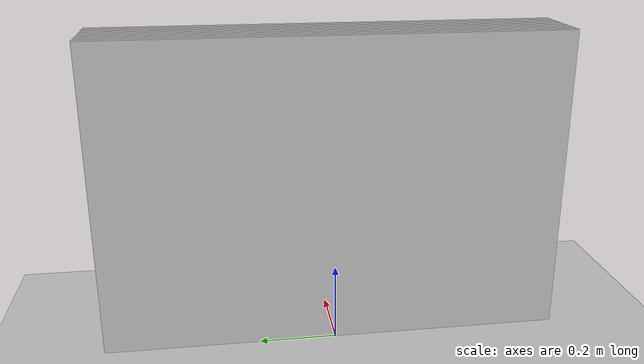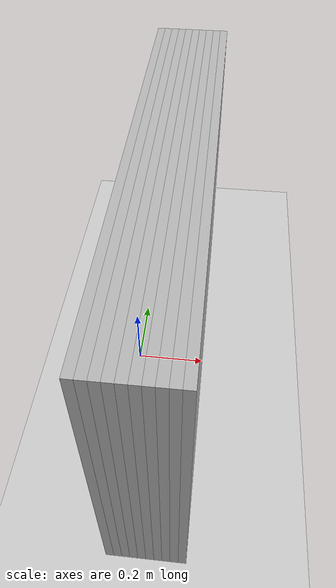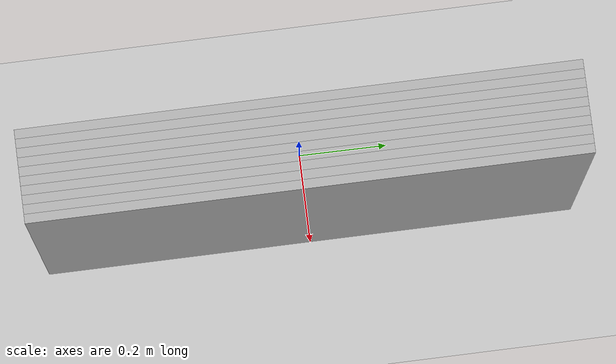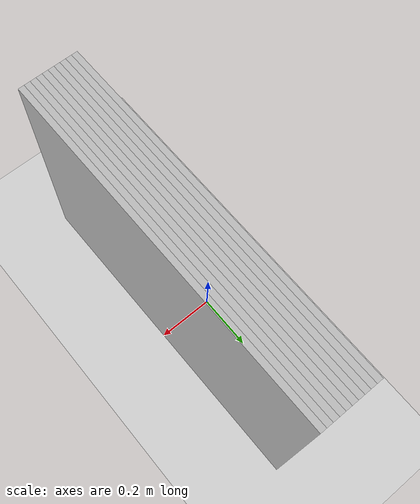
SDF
<?xml version="1.0"?>
<sdf version="1.6">
  <world name="stair_lab">
    <!-- stair_lab_wall_h080 —— 由 stairstudy/fixtures.py 生成（离线候选件，**不被任何在册 launch 引用**）
         场景：整面高 0.80m 厚 0.20m 无踏步
         请勿与 worlds/m1_world.world 混用：后者是红线件（各跑 world_before/after.sha 对它取指纹）。 -->
    <include><uri>model://ground_plane</uri></include>
    <include><uri>model://sun</uri></include>
    <model name="wall_h080">
      <static>1</static>
      <pose>0.000 0.000 0 0 0 0</pose>
        <link name="seg0">
          <pose>0.010 0.000 0.400 0 0 0</pose>
          <collision name="c0"><geometry><box><size>0.02 1.200 0.800</size></box></geometry></collision>
          <visual name="v0"><geometry><box><size>0.02 1.200 0.800</size></box></geometry></visual>
        </link>        <link name="seg1">
          <pose>0.030 0.000 0.400 0 0 0</pose>
          <collision name="c1"><geometry><box><size>0.02 1.200 0.800</size></box></geometry></collision>
          <visual name="v1"><geometry><box><size>0.02 1.200 0.800</size></box></geometry></visual>
        </link>        <link name="seg2">
          <pose>0.050 0.000 0.400 0 0 0</pose>
          <collision name="c2"><geometry><box><size>0.02 1.200 0.800</size></box></geometry></collision>
          <visual name="v2"><geometry><box><size>0.02 1.200 0.800</size></box></geometry></visual>
        </link>        <link name="seg3">
          <pose>0.070 0.000 0.400 0 0 0</pose>
          <collision name="c3"><geometry><box><size>0.02 1.200 0.800</size></box></geometry></collision>
          <visual name="v3"><geometry><box><size>0.02 1.200 0.800</size></box></geometry></visual>
        </link>        <link name="seg4">
          <pose>0.090 0.000 0.400 0 0 0</pose>
          <collision name="c4"><geometry><box><size>0.02 1.200 0.800</size></box></geometry></collision>
          <visual name="v4"><geometry><box><size>0.02 1.200 0.800</size></box></geometry></visual>
        </link>        <link name="seg5">
          <pose>0.110 0.000 0.400 0 0 0</pose>
          <collision name="c5"><geometry><box><size>0.02 1.200 0.800</size></box></geometry></collision>
          <visual name="v5"><geometry><box><size>0.02 1.200 0.800</size></box></geometry></visual>
        </link>        <link name="seg6">
          <pose>0.130 0.000 0.400 0 0 0</pose>
          <collision name="c6"><geometry><box><size>0.02 1.200 0.800</size></box></geometry></collision>
          <visual name="v6"><geometry><box><size>0.02 1.200 0.800</size></box></geometry></visual>
        </link>        <link name="seg7">
          <pose>0.150 0.000 0.400 0 0 0</pose>
          <collision name="c7"><geometry><box><size>0.02 1.200 0.800</size></box></geometry></collision>
          <visual name="v7"><geometry><box><size>0.02 1.200 0.800</size></box></geometry></visual>
        </link>        <link name="seg8">
          <pose>0.170 0.000 0.400 0 0 0</pose>
          <collision name="c8"><geometry><box><size>0.02 1.200 0.800</size></box></geometry></collision>
          <visual name="v8"><geometry><box><size>0.02 1.200 0.800</size></box></geometry></visual>
        </link>        <link name="seg9">
          <pose>0.190 0.000 0.400 0 0 0</pose>
          <collision name="c9"><geometry><box><size>0.02 1.200 0.800</size></box></geometry></collision>
          <visual name="v9"><geometry><box><size>0.02 1.200 0.800</size></box></geometry></visual>
        </link>
    </model>

  </world>
</sdf>
